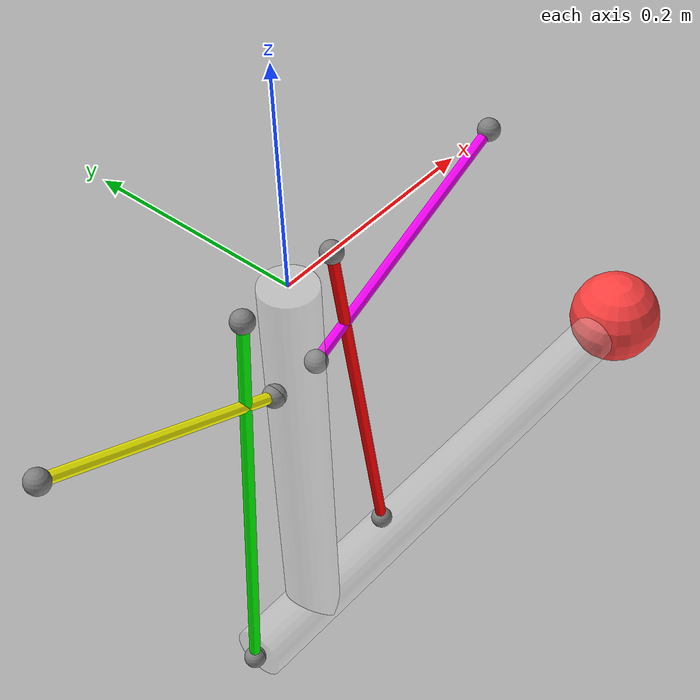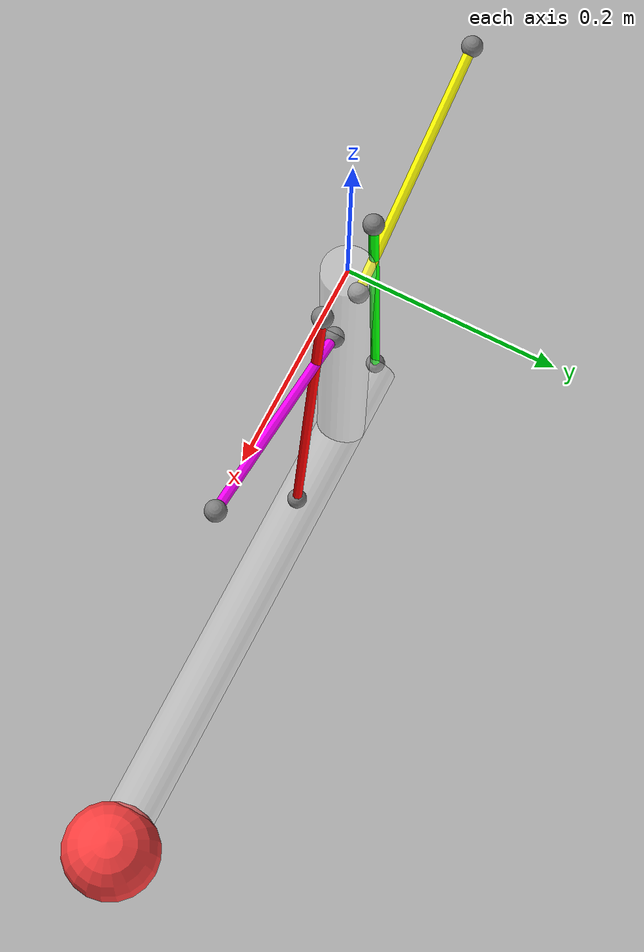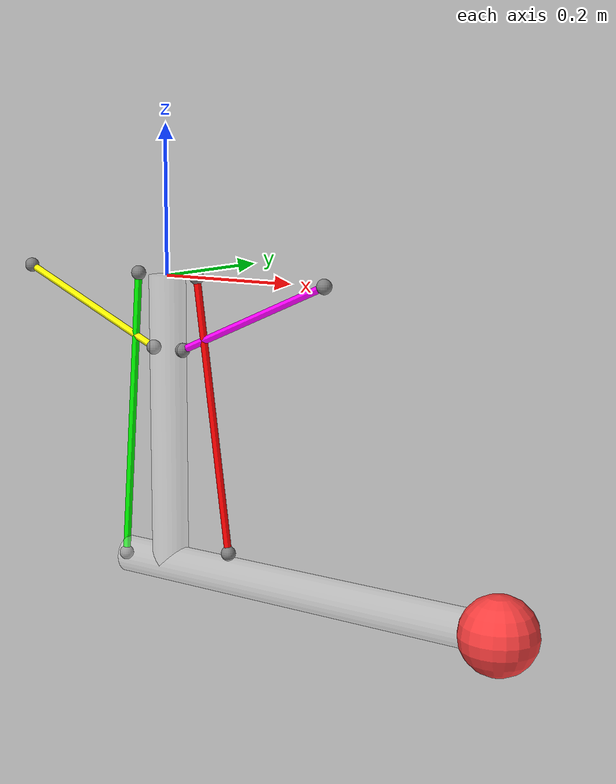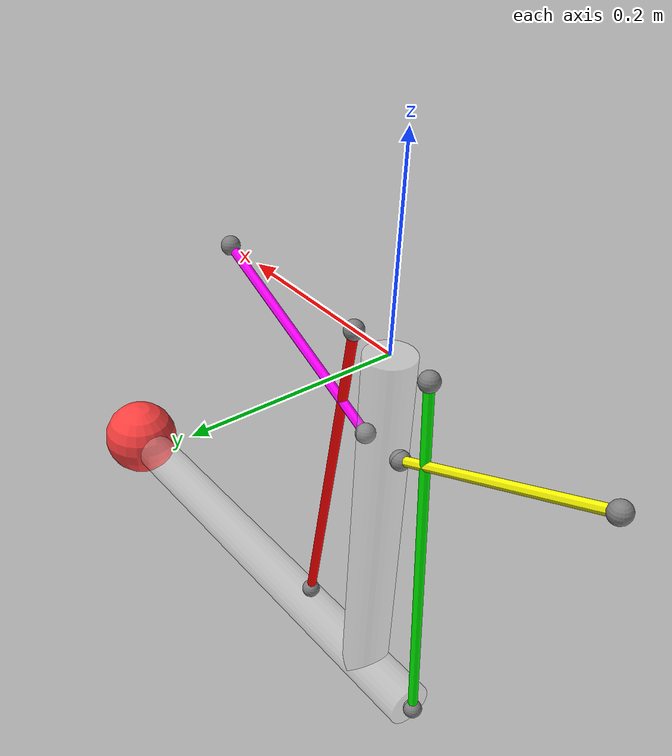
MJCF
<mujoco model="two-joint-limb">
  <compiler angle="radian"/>

  <option gravity="0 9.81 0"/>

  <default>
    <joint damping="0.1"/>
    <geom rgba="1 1 1 0.25"/>
    <general ctrllimited="true" ctrlrange="0 1" dyntype="muscle" dynprm="0.01 0.04 0 0 0 0 0 0 0 0" gaintype="muscle" biastype="muscle" gainprm="0.75 1.05 -1 200 0.5 1.6 1.5 1.3 1.2" biasprm="0.75 1.05 -1 200 0.5 1.6 1.5 1.3 1.2"/>
  </default>

  <worldbody>
    <camera pos="0 -2 0" quat="0.707107 0.707107 0 0"/>
    <light pos="0 1 1" dir="0 -0.707107 -0.707107" diffuse="1 1 1"/>
    <body name="trunk">
      <site name="deltoid1" pos="0.25 0 0" size="0.01"/>
      <site name="latissimus1" pos="-0.25 0 0" size="0.01"/>
      <body name="upper_arm">
        <joint name="shoulder" pos="0 0 0" axis="0 1 0" range="-1.0472 1.0472"/>
        <geom name="humerus" size="0.025 0.2" pos="0 0 -0.2" type="cylinder"/>
        <site name="deltoid2" pos="0.025 0 -0.1" size="0.01"/>
        <site name="latissimus2" pos="-0.025 0 -0.1" size="0.01"/>
        <site name="biceps1" pos="0.05 0 0" size="0.01"/>
        <site name="triceps1" pos="-0.05 0 0" size="0.01"/>
        <body name="lower_arm" pos="0 0 -0.4">
          <joint name="elbow" pos="0 0 0" axis="0 1 0" range="-1.0472 1.0472"/>
          <geom name="radius" size="0.025 0.2875" pos="0.2125 0 0" quat="0.707107 0 -0.707107 0" type="cylinder"/>
          <site name="biceps2" pos="0.1 0 0.03" size="0.01"/>
          <site name="triceps2" pos="-0.08 0 0" size="0.01"/>
          <body name="hand" pos="0.5 0 0">
            <geom name="hand" size="0.05" rgba="1 0.25 0.25 1"/>
          </body>
        </body>
      </body>
    </body>
  </worldbody>

  <tendon>
    <spatial name="deltoid_tendon" limited="true" range="0 1" width="0.005" rgba="1 0 1 1">
      <site site="deltoid1"/>
      <site site="deltoid2"/>
    </spatial>
    <spatial name="latissimus_tendon" limited="true" range="0 1" width="0.005" rgba="1 1 0 1">
      <site site="latissimus1"/>
      <site site="latissimus2"/>
    </spatial>
    <spatial name="biceps_tendon" limited="true" range="0 0.485" width="0.005" rgba="1 0 0 1">
      <site site="biceps1"/>
      <geom geom="humerus"/>
      <site site="biceps2"/>
    </spatial>
    <spatial name="triceps_tendon" limited="true" range="0 0.5" width="0.005" rgba="0 1 0 1">
      <site site="triceps1"/>
      <geom geom="radius"/>
      <site site="triceps2"/>
    </spatial>
  </tendon>

  <actuator>
    <general name="deltoid" tendon="deltoid_tendon" lengthrange="0.153519 0.331943" gainprm="0.75 1.05 100" biasprm="0.75 1.05 100"/>
    <general name="latissimus" tendon="latissimus_tendon" lengthrange="0.153525 0.33195" gainprm="0.75 1.05 100" biasprm="0.75 1.05 100"/>
    <general name="biceps" tendon="biceps_tendon" lengthrange="0.299515 0.472335" gainprm="0.75 1.05 100" biasprm="0.75 1.05 100"/>
    <general name="triceps" tendon="triceps_tendon" lengthrange="0.33086 0.469419" gainprm="0.75 1.05 100" biasprm="0.75 1.05 100"/>
  </actuator>

  <sensor>

    <actuatorpos actuator="deltoid" name="deltoid_length"/>

    <actuatorpos actuator="latissimus" name="latissimus_length"/>

    <actuatorpos actuator="biceps" name="biceps_length"/>

    <actuatorpos actuator="triceps" name="triceps_length"/>

    <actuatorvel actuator="deltoid" name="deltoid_velocity"/>

    <actuatorvel actuator="latissimus" name="latissimus_velocity"/>

    <actuatorvel actuator="biceps" name="biceps_velocity"/>

    <actuatorvel actuator="triceps" name="triceps_velocity"/>
  </sensor>
</mujoco>
